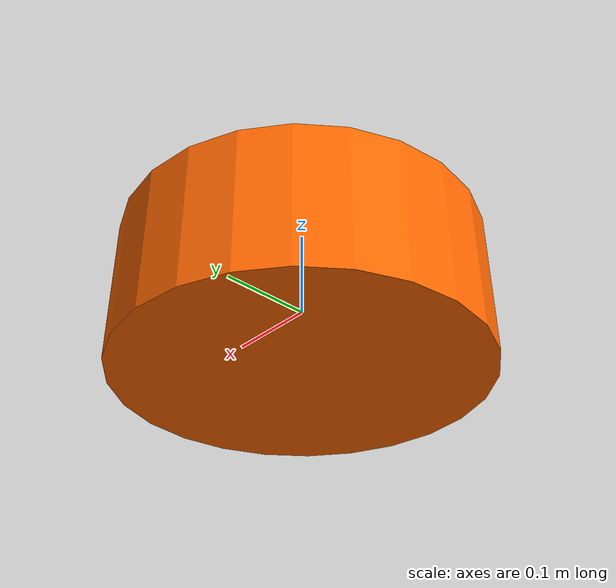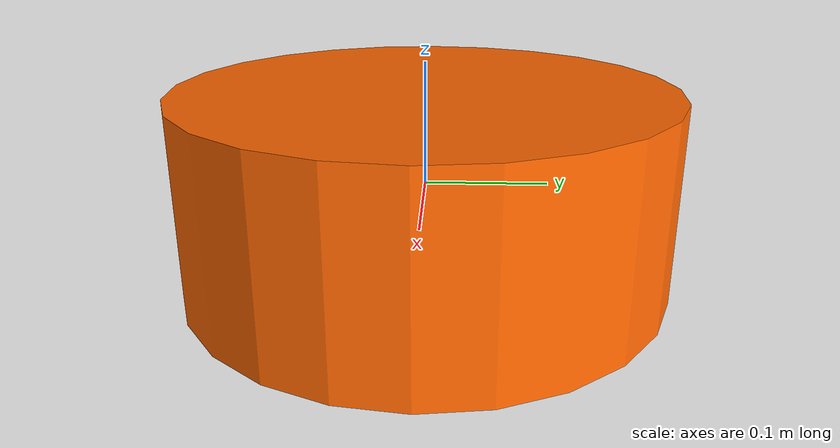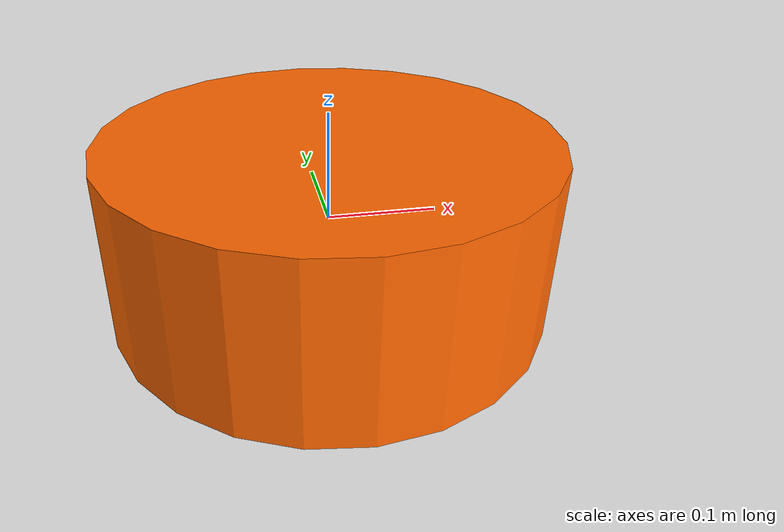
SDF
<?xml version="1.0" ?>
<sdf version="1.6">
  <model name="mbot_with_lidar">
    <!-- Base Link -->
    <link name="base_link">
      <inertial>
        <mass>1.0</mass>
        <inertia>
          <ixx>0.0166667</ixx>
          <ixy>0</ixy>
          <ixz>0</ixz>
          <iyy>0.0166667</iyy>
          <iyz>0</iyz>
          <izz>0.0166667</izz>
        </inertia>
      </inertial>
      <collision name="base_collision">
        <geometry>
          <cylinder>
            <radius>0.20</radius>
            <length>0.16</length>
          </cylinder>
        </geometry>
      </collision>
      <visual name="base_visual">
        <geometry>
          <cylinder>
            <radius>0.20</radius>
            <length>0.16</length>
          </cylinder>
        </geometry>
        <material>
          <ambient>1 0.4 0 1</ambient>
          <diffuse>1 0.4 0 1</diffuse>
          <specular>0.1 0.1 0.1 1</specular>
        </material>
      </visual>
    </link>

    <!-- Left Wheel -->
    <link name="left_wheel">
      <inertial>
        <mass>0.2</mass>
        <inertia>
          <ixx>0.00015</ixx>
          <ixy>0</ixy>
          <ixz>0</ixz>
          <iyy>0.00015</iyy>
          <iyz>0</iyz>
          <izz>0.00015</izz>
        </inertia>
      </inertial>
      <collision name="left_wheel_collision">
        <geometry>
          <cylinder>
            <radius>0.06</radius>
            <length>0.025</length>
          </cylinder>
        </geometry>
      </collision>
      <visual name="left_wheel_visual">
        <geometry>
          <cylinder>
            <radius>0.06</radius>
            <length>0.025</length>
          </cylinder>
        </geometry>
        <material>
          <ambient>0.75 0.75 0.75 1</ambient>
          <diffuse>0.75 0.75 0.75 1</diffuse>
          <specular>0.1 0.1 0.1 1</specular>
        </material>
      </visual>
    </link>

    <!-- Right Wheel -->
    <link name="right_wheel">
      <inertial>
        <mass>0.2</mass>
        <inertia>
          <ixx>0.00015</ixx>
          <ixy>0</ixy>
          <ixz>0</ixz>
          <iyy>0.00015</iyy>
          <iyz>0</iyz>
          <izz>0.00015</izz>
        </inertia>
      </inertial>
      <collision name="right_wheel_collision">
        <geometry>
          <cylinder>
            <radius>0.06</radius>
            <length>0.025</length>
          </cylinder>
        </geometry>
      </collision>
      <visual name="right_wheel_visual">
        <geometry>
          <cylinder>
            <radius>0.06</radius>
            <length>0.025</length>
          </cylinder>
        </geometry>
        <material>
          <ambient>0.75 0.75 0.75 1</ambient>
          <diffuse>0.75 0.75 0.75 1</diffuse>
          <specular>0.1 0.1 0.1 1</specular>
        </material>
      </visual>
    </link>

    <!-- Caster Wheel -->
    <link name="caster_wheel">
      <inertial>
        <mass>0.2</mass>
        <inertia>
          <ixx>0.00001</ixx>
          <ixy>0</ixy>
          <ixz>0</ixz>
          <iyy>0.00001</iyy>
          <iyz>0</iyz>
          <izz>0.00001</izz>
        </inertia>
      </inertial>
      <collision name="caster_collision">
        <geometry>
          <sphere>
            <radius>0.015</radius>
          </sphere>
        </geometry>
      </collision>
      <visual name="caster_visual">
        <geometry>
          <sphere>
            <radius>0.015</radius>
          </sphere>
        </geometry>
        <material>
          <ambient>0 0 0 1</ambient>
          <diffuse>0 0 0 1</diffuse>
          <specular>0.1 0.1 0.1 1</specular>
        </material>
      </visual>
    </link>

    <!-- GPU Lidar Link -->
    <link name="gpu_lidar_link">
      <inertial>
        <mass>0.1</mass>
        <inertia>
          <ixx>0.000016667</ixx>
          <ixy>0</ixy>
          <ixz>0</ixz>
          <iyy>0.000016667</iyy>
          <iyz>0</iyz>
          <izz>0.000016667</izz>
        </inertia>
      </inertial>
      <collision name="lidar_collision">
        <geometry>
          <cylinder>
            <radius>0.05</radius>
            <length>0.05</length>
          </cylinder>
        </geometry>
      </collision>
      <visual name="lidar_visual">
        <geometry>
          <cylinder>
            <radius>0.05</radius>
            <length>0.05</length>
          </cylinder>
        </geometry>
        <material>
          <ambient>0 0 0 1</ambient>
          <diffuse>0 0 0 1</diffuse>
          <specular>0.1 0.1 0.1 1</specular>
        </material>
      </visual>
      <sensor name="gpu_lidar" type="gpu_ray">
        <topic>lidar</topic>
        <update_rate>10</update_rate>
        <ray>
          <scan>
            <horizontal>
              <samples>360</samples>
              <resolution>1</resolution>
              <min_angle>-3.14159</min_angle>
              <max_angle>3.14159</max_angle>
            </horizontal>
          </scan>
          <range>
            <min>0.08</min>
            <max>10.0</max>
            <resolution>0.01</resolution>
          </range>
        </ray>
        <always_on>1</always_on>
        <visualize>true</visualize>
      </sensor>
    </link>

    <!-- Joints -->
    <joint name="left_wheel_joint" type="revolute">
      <parent>base_link</parent>
      <child>left_wheel</child>
      <axis>
        <xyz>0 1 0</xyz>
        <limit>
          <lower>-1.79769e+308</lower>
          <upper>1.79769e+308</upper>
        </limit>
      </axis>
    </joint>

    <joint name="right_wheel_joint" type="revolute">
      <parent>base_link</parent>
      <child>right_wheel</child>
      <axis>
        <xyz>0 1 0</xyz>
        <limit>
          <lower>-1.79769e+308</lower>
          <upper>1.79769e+308</upper>
        </limit>
      </axis>
    </joint>

    <joint name="caster_wheel_joint" type="ball">
      <parent>base_link</parent>
      <child>caster_wheel</child>
    </joint>

    <joint name="lidar_joint" type="fixed">
      <parent>base_link</parent>
      <child>gpu_lidar_link</child>
      <pose>0 0 0.105 0 0 0</pose>
    </joint>

    <!-- Plugins -->
    <plugin filename="libignition-gazebo-diff-drive-system.so" name="ignition::gazebo::systems::DiffDrive">
      <left_joint>left_wheel_joint</left_joint>
      <right_joint>right_wheel_joint</right_joint>
      <wheel_separation>0.38</wheel_separation>
      <wheel_radius>0.06</wheel_radius>
      <odom_publish_frequency>1</odom_publish_frequency>
      <topic>cmd_vel</topic>
    </plugin>

    <plugin filename="libignition-gazebo-odometry-publisher-system.so" name="ignition::gazebo::systems::OdometryPublisher">
      <odom_frame>odom</odom_frame>
      <robot_base_frame>base_link</robot_base_frame>
      <odom_publish_frequency>20</odom_publish_frequency>
    </plugin>

    <plugin filename="libignition-gazebo-joint-state-publisher-system.so" name="ignition::gazebo::systems::JointStatePublisher">
      <joint_name>left_wheel_joint</joint_name>
      <joint_name>right_wheel_joint</joint_name>
    </plugin>
  </model>
</sdf>
